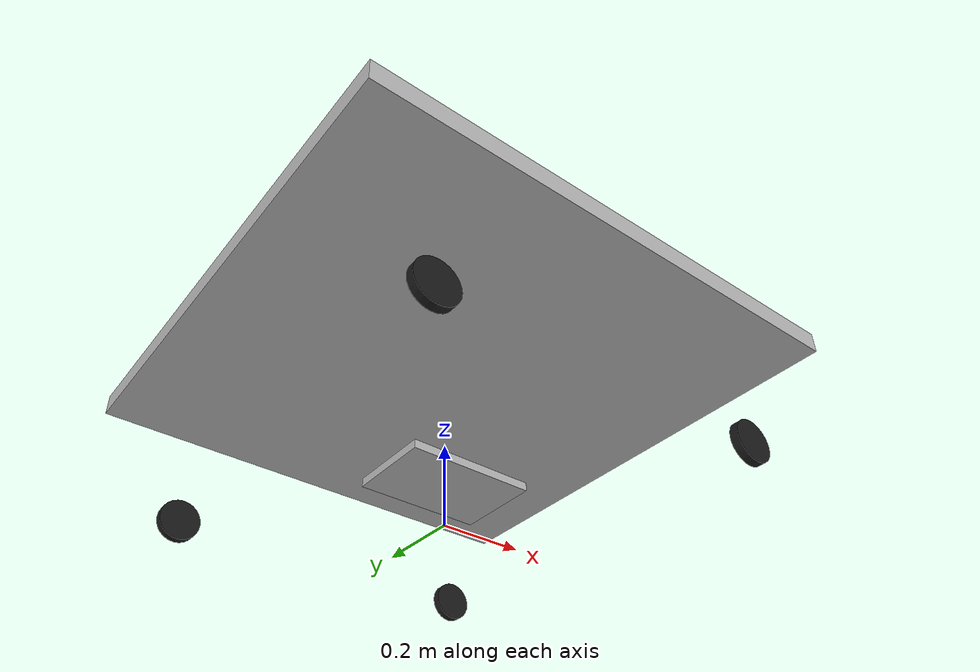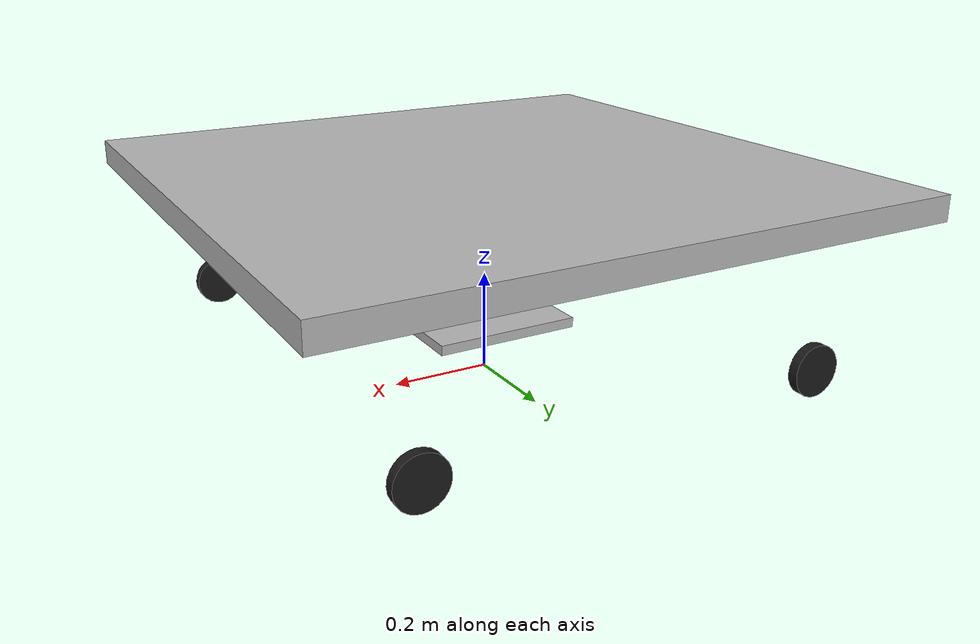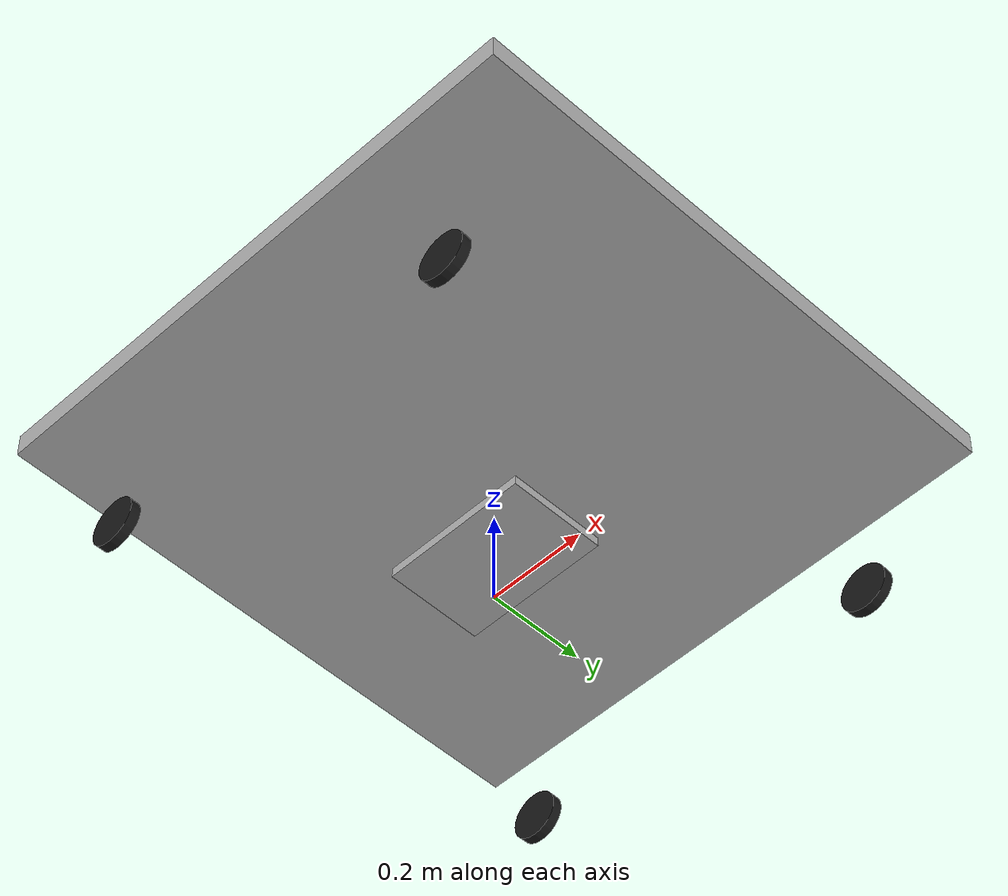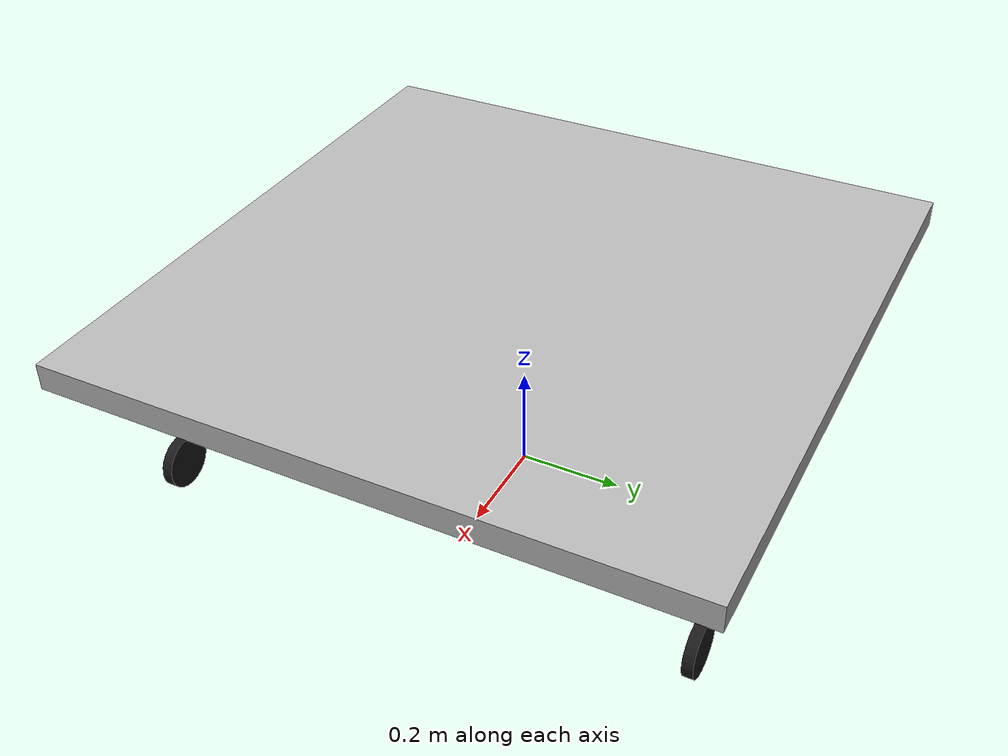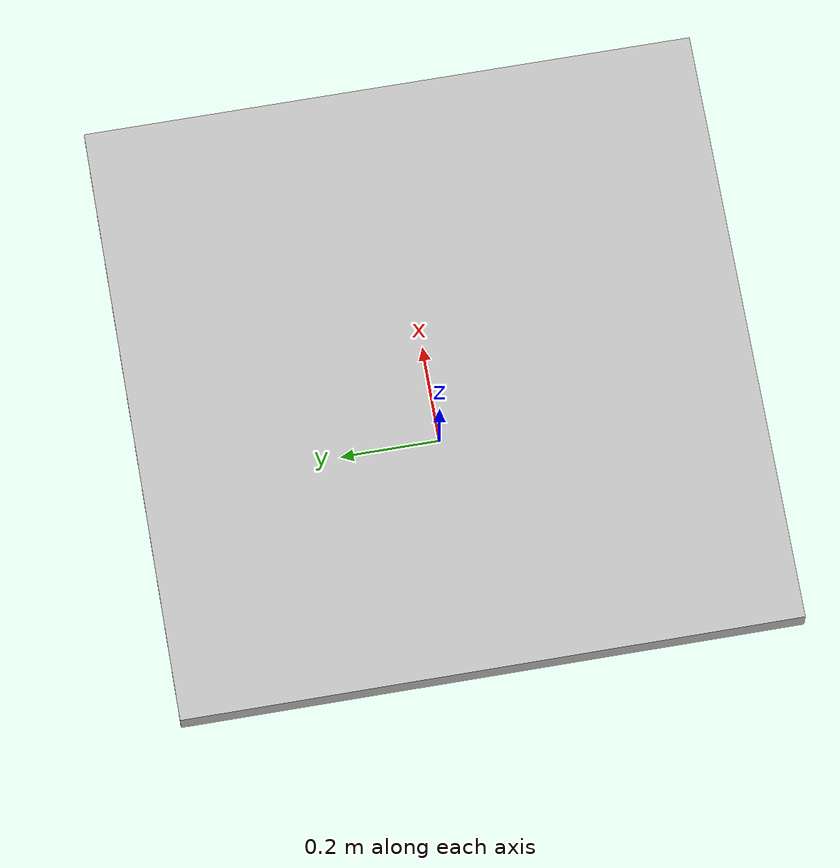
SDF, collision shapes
<?xml version='1.0'?>
<sdf version='1.5'>
  <model name='moving_platform_aruco'>
	<link name='chassis'>
        <pose frame=''>-0 -0 0.1 0 -0 0</pose>
        <inertial>
          <inertia>
            <ixx>1</ixx>
            <ixy>0</ixy>
            <ixz>0</ixz>
            <iyy>1</iyy>
            <iyz>0</iyz>
            <izz>1</izz>
          </inertia>
          <mass>1</mass>
          <pose frame=''>0 0 0 0 -0 0</pose>
        </inertial>
        <self_collide>0</self_collide>
        <kinematic>0</kinematic>
        <gravity>1</gravity>
        <visual name='visual'>
          <geometry>
            <box>
              <size>0.3 0.2 0.02</size>
            </box>
          </geometry>
          <material>
            <shader type='pixel'>
              <normal_map>__default__</normal_map>
            </shader>
          </material>
          <pose frame=''>0 0 0 0 -0 0</pose>
          <cast_shadows>1</cast_shadows>
          <transparency>0</transparency>
        </visual>
        <visual name='visual1'>
          <pose frame=''>-0.2 0 0.122 0 1.57 0</pose>
          <geometry>
            <mesh>
              <uri>model://marker1/meshes/Marker1.dae</uri>
            </mesh>
          </geometry>
          <cast_shadows>1</cast_shadows>
          <transparency>0</transparency>
          <material>
            <shader type='pixel'>
              <normal_map>__default__</normal_map>
            </shader>
            <emissive>1 1 1 0</emissive>
          </material>
        </visual>
        <collision name='collision'>
          <laser_retro>0</laser_retro>
          <max_contacts>10</max_contacts>
          <pose frame=''>0 0 0 0 -0 0</pose>
          <geometry>
            <box>
              <size>0.3 0.2 0.02</size>
            </box>
          </geometry>
          <surface>
            <friction>
              <ode>
                <mu>1</mu>
                <mu2>1</mu2>
                <fdir1>0 0 0</fdir1>
                <slip1>0</slip1>
                <slip2>0</slip2>
              </ode>
            </friction>
            <bounce>
              <restitution_coefficient>0</restitution_coefficient>
              <threshold>1e+06</threshold>
            </bounce>
            <contact>
              <collide_without_contact>0</collide_without_contact>
              <collide_without_contact_bitmask>1</collide_without_contact_bitmask>
              <collide_bitmask>1</collide_bitmask>
              <ode>
                <soft_cfm>0</soft_cfm>
                <soft_erp>0.2</soft_erp>
                <kp>1e+13</kp>
                <kd>1</kd>
                <max_vel>0.01</max_vel>
                <min_depth>0</min_depth>
              </ode>
              <bullet>
                <split_impulse>1</split_impulse>
                <split_impulse_penetration_threshold>-0.01</split_impulse_penetration_threshold>
                <soft_cfm>0</soft_cfm>
                <soft_erp>0.2</soft_erp>
                <kp>1e+13</kp>
                <kd>1</kd>
              </bullet>
            </contact>
          </surface>
        </collision>
        <collision name='collision1'>
          <laser_retro>0</laser_retro>
          <max_contacts>10</max_contacts>
          <pose frame=''>0 0 0.3 0 -0 0</pose>
          <geometry>
            <box>
              <size>1.2 1.2 0.05</size>
            </box>
          </geometry>
          <surface>
            <friction>
              <ode>
                <mu>1500.0</mu>
                <mu2>1500.0</mu2>
                <fdir1>3 3 3</fdir1>
                <slip1>3</slip1>
                <slip2>3</slip2>
              </ode>
            </friction>
            <bounce>
              <restitution_coefficient>0</restitution_coefficient>
              <threshold>1e+06</threshold>
            </bounce>
            <contact>
              <collide_without_contact>0</collide_without_contact>
              <collide_without_contact_bitmask>1</collide_without_contact_bitmask>
              <collide_bitmask>1</collide_bitmask>
              <ode>
                <soft_cfm>1</soft_cfm>
                <soft_erp>1.2</soft_erp>
                <kp>1e+13</kp>
                <kd>2</kd>
                <max_vel>0.1</max_vel>
                <min_depth>0</min_depth>
              </ode>
              <bullet>
                <split_impulse>1</split_impulse>
                <split_impulse_penetration_threshold>-0.01</split_impulse_penetration_threshold>
                <soft_cfm>0</soft_cfm>
                <soft_erp>0.2</soft_erp>
                <kp>1e+13</kp>
                <kd>1</kd>
              </bullet>
            </contact>
          </surface>
        </collision>
      </link>
      <link name='left_wheel'>
        <pose frame=''>0.4 0.51 0.1 0.004225 1.5707 1.57491</pose>
        <inertial>
          <inertia>
            <ixx>1</ixx>
            <ixy>0</ixy>
            <ixz>0</ixz>
            <iyy>1</iyy>
            <iyz>0</iyz>
            <izz>1</izz>
          </inertia>
          <mass>1</mass>
          <pose frame=''>0 0 0 0 -0 0</pose>
        </inertial>
        <self_collide>0</self_collide>
        <kinematic>0</kinematic>
        <visual name='visual'>
          <geometry>
            <cylinder>
              <radius>0.05</radius>
              <length>0.02</length>
            </cylinder>
          </geometry>
          <material>
            <shader type='pixel'>
              <normal_map>__default__</normal_map>
            </shader>
            <ambient>0.001 0.001 0.001 0</ambient>
            <diffuse>0.1 0.1 0.1 0</diffuse>
            <specular>0.001 0.001 0.001 0</specular>
            <emissive>0.001 0.001 0.001 0</emissive>
            <script>
              <name>ModelPreview_1::left_wheel::visual_MATERIAL_</name>
              <uri>__default__</uri>
            </script>
          </material>
          <pose frame=''>0 0 0 0 -0 0</pose>
          <cast_shadows>1</cast_shadows>
          <transparency>0</transparency>
        </visual>
        <collision name='collision'>
          <laser_retro>0</laser_retro>
          <max_contacts>10</max_contacts>
          <pose frame=''>0 0 0 0 -0 0</pose>
          <geometry>
            <cylinder>
              <radius>0.05</radius>
              <length>0.02</length>
            </cylinder>
          </geometry>
          <surface>
            <friction>
              <ode>
                <mu>1</mu>
                <mu2>1</mu2>
                <fdir1>0 0 0</fdir1>
                <slip1>0</slip1>
                <slip2>0</slip2>
              </ode>
            </friction>
            <bounce>
              <restitution_coefficient>0</restitution_coefficient>
              <threshold>1e+06</threshold>
            </bounce>
            <contact>
              <collide_without_contact>0</collide_without_contact>
              <collide_without_contact_bitmask>1</collide_without_contact_bitmask>
              <collide_bitmask>1</collide_bitmask>
              <ode>
                <soft_cfm>0</soft_cfm>
                <soft_erp>0.2</soft_erp>
                <kp>1e+13</kp>
                <kd>1</kd>
                <max_vel>0.01</max_vel>
                <min_depth>0</min_depth>
              </ode>
              <bullet>
                <split_impulse>1</split_impulse>
                <split_impulse_penetration_threshold>-0.01</split_impulse_penetration_threshold>
                <soft_cfm>0</soft_cfm>
                <soft_erp>0.2</soft_erp>
                <kp>1e+13</kp>
                <kd>1</kd>
              </bullet>
            </contact>
          </surface>
        </collision>
        <gravity>1</gravity>
      </link>
      <link name='left_wheel_1'>
        <pose frame=''>-0.4 0.51 0.1 0.004221 1.5707 1.57492</pose>
        <inertial>
          <inertia>
            <ixx>1</ixx>
            <ixy>0</ixy>
            <ixz>0</ixz>
            <iyy>1</iyy>
            <iyz>0</iyz>
            <izz>1</izz>
          </inertia>
          <mass>1</mass>
          <pose frame=''>0 0 0 0 -0 0</pose>
        </inertial>
        <self_collide>0</self_collide>
        <kinematic>0</kinematic>
        <visual name='visual'>
          <geometry>
            <cylinder>
              <radius>0.05</radius>
              <length>0.02</length>
            </cylinder>
          </geometry>
          <material>
            <shader type='pixel'>
              <normal_map>__default__</normal_map>
            </shader>
            <ambient>0.001 0.001 0.001 0</ambient>
            <diffuse>0.1 0.1 0.1 0</diffuse>
            <specular>0.001 0.001 0.001 0</specular>
            <emissive>0.001 0.001 0.001 0</emissive>
            <script>
              <name>ModelPreview_1::left_wheel_1::visual_MATERIAL_</name>
              <uri>__default__</uri>
            </script>
          </material>
          <pose frame=''>0 0 0 0 -0 0</pose>
          <cast_shadows>1</cast_shadows>
          <transparency>0</transparency>
        </visual>
        <collision name='collision'>
          <laser_retro>0</laser_retro>
          <max_contacts>10</max_contacts>
          <pose frame=''>0 0 0 0 -0 0</pose>
          <geometry>
            <cylinder>
              <radius>0.05</radius>
              <length>0.02</length>
            </cylinder>
          </geometry>
          <surface>
            <friction>
              <ode>
                <mu>1</mu>
                <mu2>1</mu2>
                <fdir1>0 0 0</fdir1>
                <slip1>0</slip1>
                <slip2>0</slip2>
              </ode>
            </friction>
            <bounce>
              <restitution_coefficient>0</restitution_coefficient>
              <threshold>1e+06</threshold>
            </bounce>
            <contact>
              <collide_without_contact>0</collide_without_contact>
              <collide_without_contact_bitmask>1</collide_without_contact_bitmask>
              <collide_bitmask>1</collide_bitmask>
              <ode>
                <soft_cfm>0</soft_cfm>
                <soft_erp>0.2</soft_erp>
                <kp>1e+13</kp>
                <kd>1</kd>
                <max_vel>0.01</max_vel>
                <min_depth>0</min_depth>
              </ode>
              <bullet>
                <split_impulse>1</split_impulse>
                <split_impulse_penetration_threshold>-0.01</split_impulse_penetration_threshold>
                <soft_cfm>0</soft_cfm>
                <soft_erp>0.2</soft_erp>
                <kp>1e+13</kp>
                <kd>1</kd>
              </bullet>
            </contact>
          </surface>
        </collision>
        <gravity>1</gravity>
      </link>
      <link name='right_wheel'>
        <pose frame=''>0.4 -0.51 0.1 -0.000409 1.5707 1.57027</pose>
        <inertial>
          <inertia>
            <ixx>1</ixx>
            <ixy>0</ixy>
            <ixz>0</ixz>
            <iyy>1</iyy>
            <iyz>0</iyz>
            <izz>1</izz>
          </inertia>
          <mass>1</mass>
          <pose frame=''>0 0 0 0 -0 0</pose>
        </inertial>
        <self_collide>0</self_collide>
        <kinematic>0</kinematic>
        <visual name='visual'>
          <geometry>
            <cylinder>
              <radius>0.05</radius>
              <length>0.02</length>
            </cylinder>
          </geometry>
          <material>
            <shader type='pixel'>
              <normal_map>__default__</normal_map>
            </shader>
            <ambient>0.001 0.001 0.001 0</ambient>
            <diffuse>0.1 0.1 0.1 0</diffuse>
            <specular>0.001 0.001 0.001 0</specular>
            <emissive>0.001 0.001 0.001 0</emissive>
            <script>
              <name>ModelPreview_1::right_wheel::visual_MATERIAL_</name>
              <uri>__default__</uri>
            </script>
          </material>
          <pose frame=''>0 0 0 0 -0 0</pose>
          <cast_shadows>1</cast_shadows>
          <transparency>0</transparency>
        </visual>
        <collision name='collision'>
          <laser_retro>0</laser_retro>
          <max_contacts>10</max_contacts>
          <pose frame=''>0 0 0 0 -0 0</pose>
          <geometry>
            <cylinder>
              <radius>0.05</radius>
              <length>0.02</length>
            </cylinder>
          </geometry>
          <surface>
            <friction>
              <ode>
                <mu>1</mu>
                <mu2>1</mu2>
                <fdir1>0 0 0</fdir1>
                <slip1>0</slip1>
                <slip2>0</slip2>
              </ode>
            </friction>
            <bounce>
              <restitution_coefficient>0</restitution_coefficient>
              <threshold>1e+06</threshold>
            </bounce>
            <contact>
              <collide_without_contact>0</collide_without_contact>
              <collide_without_contact_bitmask>1</collide_without_contact_bitmask>
              <collide_bitmask>1</collide_bitmask>
              <ode>
                <soft_cfm>0</soft_cfm>
                <soft_erp>0.2</soft_erp>
                <kp>1e+13</kp>
                <kd>1</kd>
                <max_vel>0.01</max_vel>
                <min_depth>0</min_depth>
              </ode>
              <bullet>
                <split_impulse>1</split_impulse>
                <split_impulse_penetration_threshold>-0.01</split_impulse_penetration_threshold>
                <soft_cfm>0</soft_cfm>
                <soft_erp>0.2</soft_erp>
                <kp>1e+13</kp>
                <kd>1</kd>
              </bullet>
            </contact>
          </surface>
        </collision>
        <gravity>1</gravity>
      </link>
      <link name='right_wheel_1'>
        <pose frame=''>-0.4 -0.51 0.1 0.004531 1.5707 1.57522</pose>
        <inertial>
          <inertia>
            <ixx>1</ixx>
            <ixy>0</ixy>
            <ixz>0</ixz>
            <iyy>1</iyy>
            <iyz>0</iyz>
            <izz>1</izz>
          </inertia>
          <mass>1</mass>
          <pose frame=''>0 0 0 0 -0 0</pose>
        </inertial>
        <self_collide>0</self_collide>
        <kinematic>0</kinematic>
        <visual name='visual'>
          <geometry>
            <cylinder>
              <radius>0.05</radius>
              <length>0.02</length>
            </cylinder>
          </geometry>
          <material>
            <shader type='pixel'>
              <normal_map>__default__</normal_map>
            </shader>
            <ambient>0.001 0.001 0.001 0</ambient>
            <diffuse>0.1 0.1 0.1 0</diffuse>
            <specular>0.001 0.001 0.001 0</specular>
            <emissive>0.001 0.001 0.001 0</emissive>
            <script>
              <name>ModelPreview_1::right_wheel_1::visual_MATERIAL_</name>
              <uri>__default__</uri>
            </script>
          </material>
          <pose frame=''>0 0 0 0 -0 0</pose>
          <cast_shadows>1</cast_shadows>
          <transparency>0</transparency>
        </visual>
        <collision name='collision'>
          <laser_retro>0</laser_retro>
          <max_contacts>10</max_contacts>
          <pose frame=''>0 0 0 0 -0 0</pose>
          <geometry>
            <cylinder>
              <radius>0.05</radius>
              <length>0.02</length>
            </cylinder>
          </geometry>
          <surface>
            <friction>
              <ode>
                <mu>1</mu>
                <mu2>1</mu2>
                <fdir1>0 0 0</fdir1>
                <slip1>0</slip1>
                <slip2>0</slip2>
              </ode>
            </friction>
            <bounce>
              <restitution_coefficient>0</restitution_coefficient>
              <threshold>1e+06</threshold>
            </bounce>
            <contact>
              <collide_without_contact>0</collide_without_contact>
              <collide_without_contact_bitmask>1</collide_without_contact_bitmask>
              <collide_bitmask>1</collide_bitmask>
              <ode>
                <soft_cfm>0</soft_cfm>
                <soft_erp>0.2</soft_erp>
                <kp>1e+13</kp>
                <kd>1</kd>
                <max_vel>0.01</max_vel>
                <min_depth>0</min_depth>
              </ode>
              <bullet>
                <split_impulse>1</split_impulse>
                <split_impulse_penetration_threshold>-0.01</split_impulse_penetration_threshold>
                <soft_cfm>0</soft_cfm>
                <soft_erp>0.2</soft_erp>
                <kp>1e+13</kp>
                <kd>1</kd>
              </bullet>
            </contact>
          </surface>
        </collision>
        <gravity>1</gravity>
      </link>
      <joint name='left_wheel_hinge_1' type='revolute'>
        <parent>chassis</parent>
        <child>left_wheel_1</child>
        <pose frame=''>0 0 -0.03 0 -0 0</pose>
        <axis>
          <xyz>0 0 1</xyz>
          <use_parent_model_frame>0</use_parent_model_frame>
          <limit>
            <lower>-1e+16</lower>
            <upper>1e+16</upper>
            <effort>-1</effort>
            <velocity>-1</velocity>
          </limit>
          <dynamics>
            <spring_reference>0</spring_reference>
            <spring_stiffness>0</spring_stiffness>
            <damping>0</damping>
            <friction>0</friction>
          </dynamics>
        </axis>
        <physics>
          <ode>
            <limit>
              <cfm>0</cfm>
              <erp>0.2</erp>
            </limit>
            <suspension>
              <cfm>0</cfm>
              <erp>0.2</erp>
            </suspension>
          </ode>
        </physics>
      </joint>
      <joint name='left_wheel_hinge' type='revolute'>
        <parent>chassis</parent>
        <child>left_wheel</child>
        <pose frame=''>0 0 -0.03 0 -0 0</pose>
        <axis>
          <xyz>0 0 1</xyz>
          <use_parent_model_frame>0</use_parent_model_frame>
          <limit>
            <lower>-1e+16</lower>
            <upper>1e+16</upper>
            <effort>-1</effort>
            <velocity>-1</velocity>
          </limit>
          <dynamics>
            <spring_reference>0</spring_reference>
            <spring_stiffness>0</spring_stiffness>
            <damping>0</damping>
            <friction>0</friction>
          </dynamics>
        </axis>
        <physics>
          <ode>
            <limit>
              <cfm>0</cfm>
              <erp>0.2</erp>
            </limit>
            <suspension>
              <cfm>0</cfm>
              <erp>0.2</erp>
            </suspension>
          </ode>
        </physics>
      </joint>
      <joint name='right_wheel_hinge_1' type='revolute'>
        <parent>chassis</parent>
        <child>right_wheel_1</child>
        <pose frame=''>0 0 0.03 0 -0 0</pose>
        <axis>
          <xyz>0 0 1</xyz>
          <use_parent_model_frame>0</use_parent_model_frame>
          <limit>
            <lower>-1e+16</lower>
            <upper>1e+16</upper>
            <effort>-1</effort>
            <velocity>-1</velocity>
          </limit>
          <dynamics>
            <spring_reference>0</spring_reference>
            <spring_stiffness>0</spring_stiffness>
            <damping>0</damping>
            <friction>0</friction>
          </dynamics>
        </axis>
        <physics>
          <ode>
            <limit>
              <cfm>0</cfm>
              <erp>0.2</erp>
            </limit>
            <suspension>
              <cfm>0</cfm>
              <erp>0.2</erp>
            </suspension>
          </ode>
        </physics>
      </joint>
      <joint name='right_wheel_hinge' type='revolute'>
        <parent>chassis</parent>
        <child>right_wheel</child>
        <pose frame=''>0 0 0.03 0 -0 0</pose>
        <axis>
          <xyz>0 0 1</xyz>
          <use_parent_model_frame>0</use_parent_model_frame>
          <limit>
            <lower>-1e+16</lower>
            <upper>1e+16</upper>
            <effort>-1</effort>
            <velocity>-1</velocity>
          </limit>
          <dynamics>
            <spring_reference>0</spring_reference>
            <spring_stiffness>0</spring_stiffness>
            <damping>0</damping>
            <friction>0</friction>
          </dynamics>
        </axis>
        <physics>
          <ode>
            <limit>
              <cfm>0</cfm>
              <erp>0.2</erp>
            </limit>
            <suspension>
              <cfm>0</cfm>
              <erp>0.2</erp>
            </suspension>
          </ode>
        </physics>
      </joint>
      <static>0</static>
      <allow_auto_disable>1</allow_auto_disable>
      <plugin name='model_push' filename='libgazebo_moving_platform.so'>
        <robotNamespace>/</robotNamespace>
      </plugin>
    </model>
</sdf>
